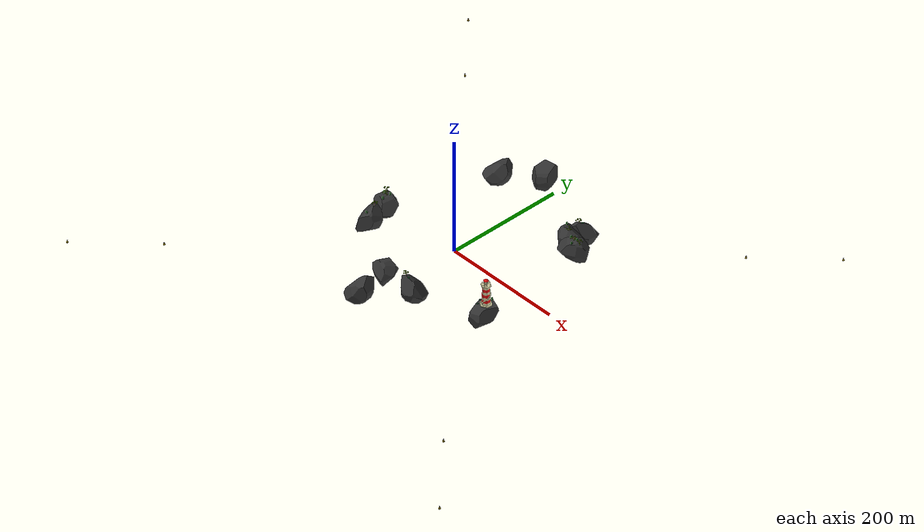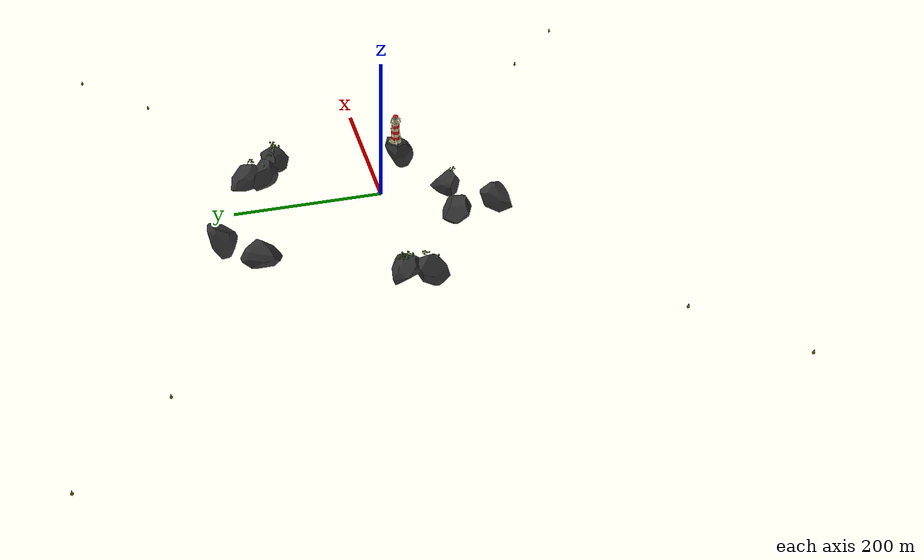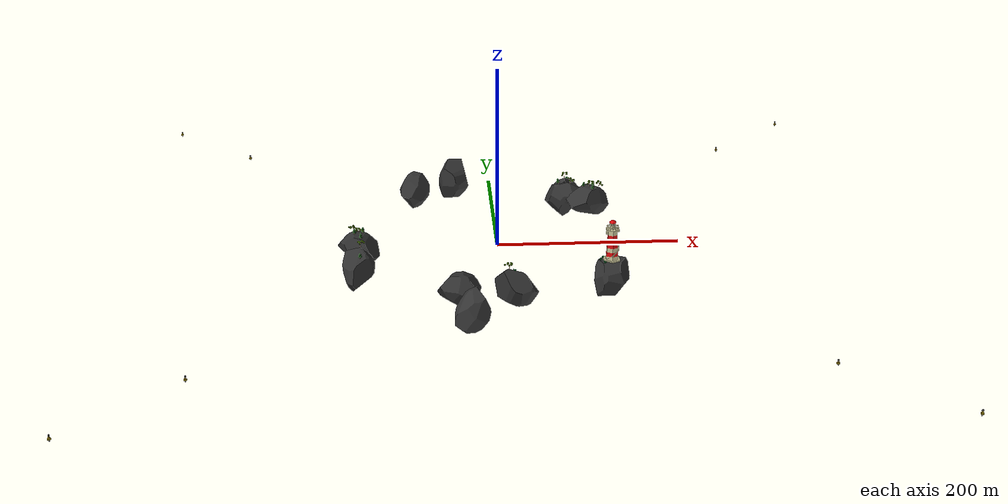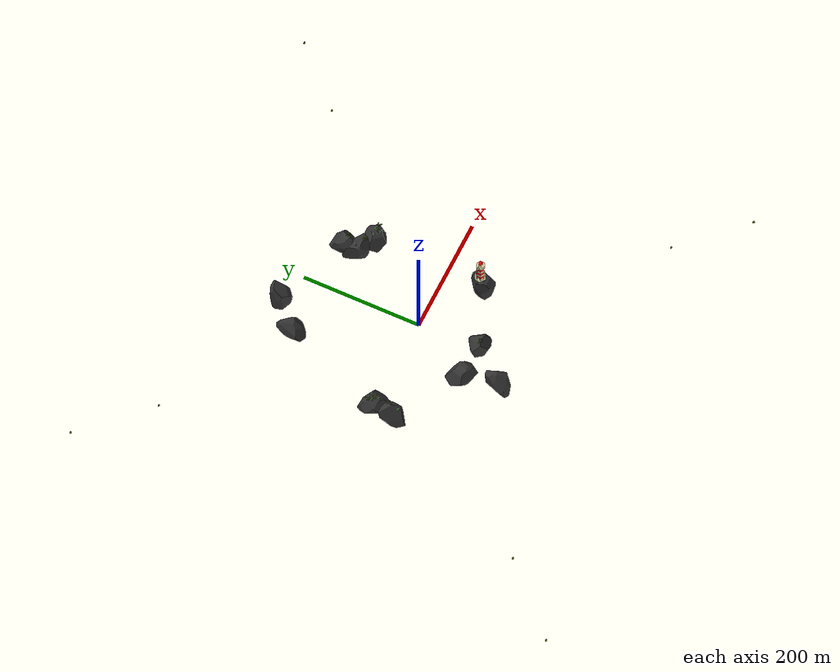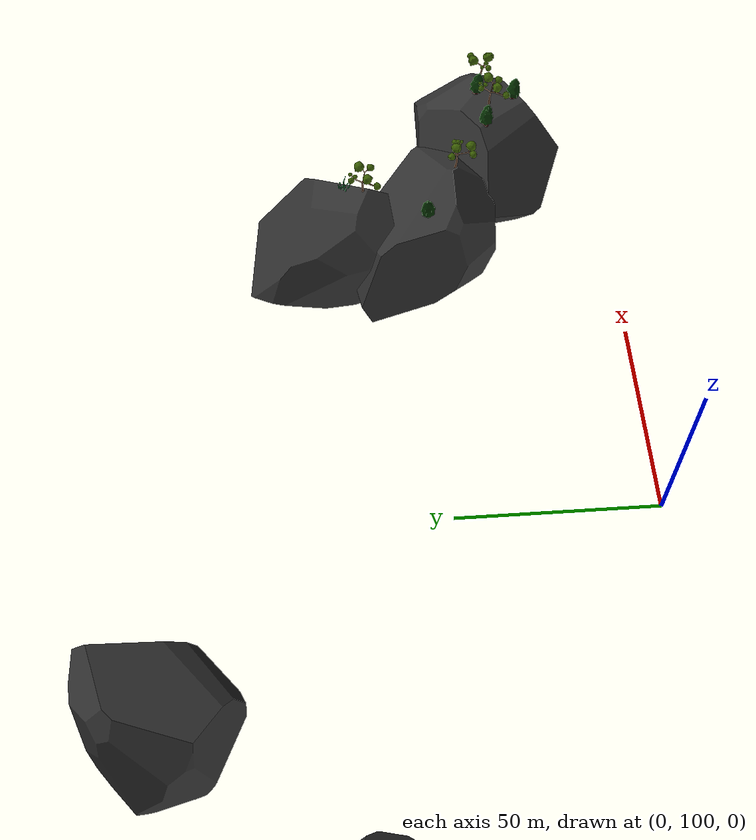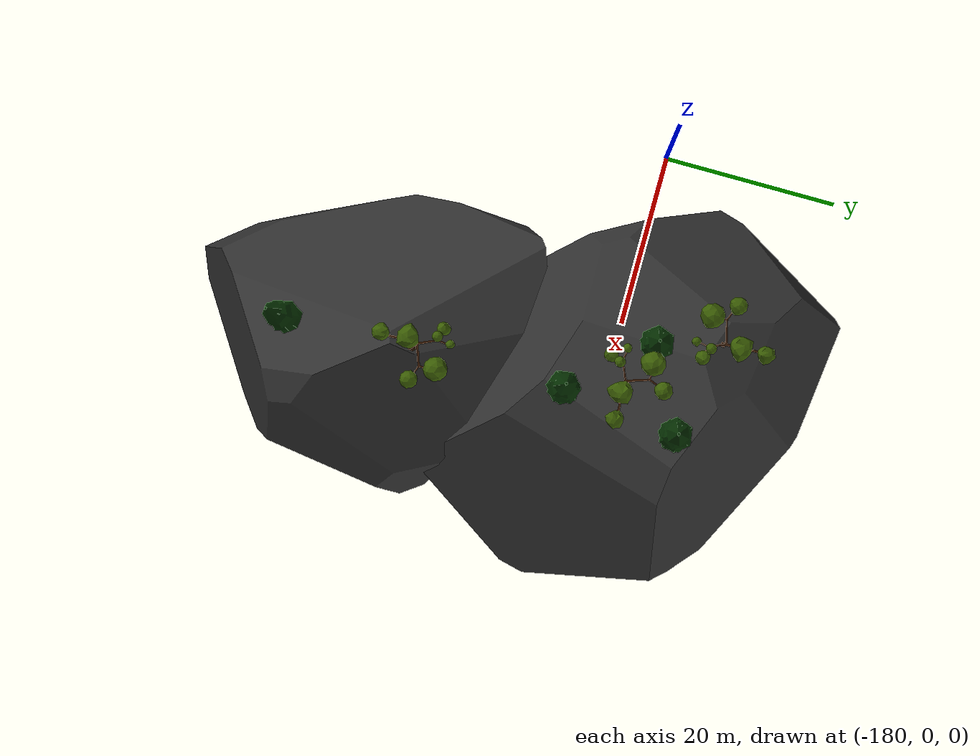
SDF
<sdf version="1.9">
 <world name="aquabot_regatta">
  <physics name="4ms" type="dart">
   <max_step_size>0.004</max_step_size>
   <real_time_factor>0.0</real_time_factor>
   <real_time_update_rate>0.0</real_time_update_rate>
  </physics>
  <plugin filename="gz-sim-physics-system" name="gz::sim::systems::Physics"/>
  <plugin filename="gz-sim-user-commands-system" name="gz::sim::systems::UserCommands"/>
  <plugin filename="gz-sim-sensors-system" name="gz::sim::systems::Sensors">
   <render_engine>ogre2</render_engine>
   <disable_on_drained_battery>true</disable_on_drained_battery>
  </plugin>
  <plugin filename="gz-sim-imu-system" name="gz::sim::systems::Imu"/>
  <plugin filename="gz-sim-magnetometer-system" name="gz::sim::systems::Magnetometer"/>
  <plugin filename="gz-sim-forcetorque-system" name="gz::sim::systems::ForceTorque"/>
  <plugin filename="gz-sim-particle-emitter2-system" name="gz::sim::systems::ParticleEmitter2"/>
  <plugin filename="gz-sim-scene-broadcaster-system" name="gz::sim::systems::SceneBroadcaster"/>
  <plugin filename="gz-sim-contact-system" name="gz::sim::systems::Contact"/>
  <plugin filename="gz-sim-navsat-system" name="gz::sim::systems::NavSat"/>
  <scene><grid>false</grid><ambient>1.0 1.0 1.0</ambient><background>0.8 0.8 0.8</background></scene>
  <spherical_coordinates>
   <surface_model>EARTH_WGS84</surface_model>
   <world_frame_orientation>ENU</world_frame_orientation>
   <latitude_deg>48.04630</latitude_deg>
   <longitude_deg>-4.97632</longitude_deg>
   <elevation>0.0</elevation>
   <heading_deg>0.0</heading_deg>
  </spherical_coordinates>
  <light type="directional" name="sun">
   <cast_shadows>false</cast_shadows>
   <pose>0 0 10 0 0 0</pose>
   <diffuse>0.8 0.8 0.8 1</diffuse>
   <specular>0.2 0.2 0.2 1</specular>
   <attenuation>
    <range>1000</range>
    <constant>0.9</constant>
    <linear>0.01</linear>
    <quadratic>0.001</quadratic>
   </attenuation>
   <direction>-0.5 0.1 -0.9</direction>
  </light>
  <include><name>aquabot_regatta_world</name><uri>aquabot_regatta_world</uri></include>
  <plugin filename="libUSVWind.so" name="vrx::USVWind">
   <wind_obj>
    <name>wamv</name>
    <link_name>wamv/base_link</link_name>
    <coeff_vector>.5 .5 .33</coeff_vector>
   </wind_obj>
   <wind_direction>240</wind_direction>
   <wind_mean_velocity>0.0</wind_mean_velocity>
   <var_wind_gain_constants>0</var_wind_gain_constants>
   <var_wind_time_constants>2</var_wind_time_constants>
   <random_seed>10</random_seed>
   <update_rate>10</update_rate>
   <topic_wind_speed>/vrx/debug/wind/speed</topic_wind_speed>
   <topic_wind_direction>/vrx/debug/wind/direction</topic_wind_direction>
  </plugin>
  <plugin filename="libPublisherPlugin.so" name="vrx::PublisherPlugin">
   <message type="gz.msgs.Param" topic="/vrx/wavefield/parameters" every="2.0">params {
          key: "direction"
          value {
            type: DOUBLE
            double_value: 0.0
          }
        }
        params {
          key: "gain"
          value {
            type: DOUBLE
            double_value: 0.3
          }
        }
        params {
          key: "period"
          value {
            type: DOUBLE
            double_value: 10.0
          }
        }
        params {
          key: "steepness"
          value {
            type: DOUBLE
            double_value: 0.0
          }
        }</message>
  </plugin>
  <include>
   <name>aquabot_sonar_buoy_0</name>
   <pose>-300 -300 0 0 1.57 0</pose>
   <uri>aquabot_sonar_buoy</uri>
   <plugin name="vrx::PolyhedraBuoyancyDrag" filename="libPolyhedraBuoyancyDrag.so">
    <fluid_density>1000</fluid_density>
    <fluid_level>0.0</fluid_level>
    <linear_drag>25.0</linear_drag>
    <angular_drag>2.0</angular_drag>
    <buoyancy name="collision_outer">
     <link_name>link</link_name>
     <pose>0 0 0 0 -1.57 0</pose>
     <geometry><cylinder><radius>1.65</radius><length>0.05</length></cylinder></geometry>
    </buoyancy>
    <wavefield><topic>/vrx/wavefield/parameters</topic></wavefield>
   </plugin>
  </include>
  <include>
   <name>aquabot_sonar_buoy_1</name>
   <pose>-300 300 0 0 1.57 0</pose>
   <uri>aquabot_sonar_buoy</uri>
   <plugin name="vrx::PolyhedraBuoyancyDrag" filename="libPolyhedraBuoyancyDrag.so">
    <fluid_density>1000</fluid_density>
    <fluid_level>0.0</fluid_level>
    <linear_drag>25.0</linear_drag>
    <angular_drag>2.0</angular_drag>
    <buoyancy name="collision_outer">
     <link_name>link</link_name>
     <pose>0 0 0 0 -1.57 0</pose>
     <geometry><cylinder><radius>1.65</radius><length>0.05</length></cylinder></geometry>
    </buoyancy>
    <wavefield><topic>/vrx/wavefield/parameters</topic></wavefield>
   </plugin>
  </include>
  <include>
   <name>aquabot_sonar_buoy_2</name>
   <pose>300 300 0 0 1.57 0</pose>
   <uri>aquabot_sonar_buoy</uri>
   <plugin name="vrx::PolyhedraBuoyancyDrag" filename="libPolyhedraBuoyancyDrag.so">
    <fluid_density>1000</fluid_density>
    <fluid_level>0.0</fluid_level>
    <linear_drag>25.0</linear_drag>
    <angular_drag>2.0</angular_drag>
    <buoyancy name="collision_outer">
     <link_name>link</link_name>
     <pose>0 0 0 0 -1.57 0</pose>
     <geometry><cylinder><radius>1.65</radius><length>0.05</length></cylinder></geometry>
    </buoyancy>
    <wavefield><topic>/vrx/wavefield/parameters</topic></wavefield>
   </plugin>
  </include>
  <include>
   <name>aquabot_sonar_buoy_3</name>
   <pose>300 -300 0 0 1.57 0</pose>
   <uri>aquabot_sonar_buoy</uri>
   <plugin name="vrx::PolyhedraBuoyancyDrag" filename="libPolyhedraBuoyancyDrag.so">
    <fluid_density>1000</fluid_density>
    <fluid_level>0.0</fluid_level>
    <linear_drag>25.0</linear_drag>
    <angular_drag>2.0</angular_drag>
    <buoyancy name="collision_outer">
     <link_name>link</link_name>
     <pose>0 0 0 0 -1.57 0</pose>
     <geometry><cylinder><radius>1.65</radius><length>0.05</length></cylinder></geometry>
    </buoyancy>
    <wavefield><topic>/vrx/wavefield/parameters</topic></wavefield>
   </plugin>
  </include>
  <include>
   <name>aquabot_sonar_buoy_4</name>
   <pose>-400 -400 0 0 1.57 0</pose>
   <uri>aquabot_sonar_buoy</uri>
   <plugin name="vrx::PolyhedraBuoyancyDrag" filename="libPolyhedraBuoyancyDrag.so">
    <fluid_density>1000</fluid_density>
    <fluid_level>0.0</fluid_level>
    <linear_drag>25.0</linear_drag>
    <angular_drag>2.0</angular_drag>
    <buoyancy name="collision_outer">
     <link_name>link</link_name>
     <pose>0 0 0 0 -1.57 0</pose>
     <geometry><cylinder><radius>1.65</radius><length>0.05</length></cylinder></geometry>
    </buoyancy>
    <wavefield><topic>/vrx/wavefield/parameters</topic></wavefield>
   </plugin>
  </include>
  <include>
   <name>aquabot_sonar_buoy_5</name>
   <pose>-400 400 0 0 1.57 0</pose>
   <uri>aquabot_sonar_buoy</uri>
   <plugin name="vrx::PolyhedraBuoyancyDrag" filename="libPolyhedraBuoyancyDrag.so">
    <fluid_density>1000</fluid_density>
    <fluid_level>0.0</fluid_level>
    <linear_drag>25.0</linear_drag>
    <angular_drag>2.0</angular_drag>
    <buoyancy name="collision_outer">
     <link_name>link</link_name>
     <pose>0 0 0 0 -1.57 0</pose>
     <geometry><cylinder><radius>1.65</radius><length>0.05</length></cylinder></geometry>
    </buoyancy>
    <wavefield><topic>/vrx/wavefield/parameters</topic></wavefield>
   </plugin>
  </include>
  <include>
   <name>aquabot_sonar_buoy_6</name>
   <pose>400 400 0 0 1.57 0</pose>
   <uri>aquabot_sonar_buoy</uri>
   <plugin name="vrx::PolyhedraBuoyancyDrag" filename="libPolyhedraBuoyancyDrag.so">
    <fluid_density>1000</fluid_density>
    <fluid_level>0.0</fluid_level>
    <linear_drag>25.0</linear_drag>
    <angular_drag>2.0</angular_drag>
    <buoyancy name="collision_outer">
     <link_name>link</link_name>
     <pose>0 0 0 0 -1.57 0</pose>
     <geometry><cylinder><radius>1.65</radius><length>0.05</length></cylinder></geometry>
    </buoyancy>
    <wavefield><topic>/vrx/wavefield/parameters</topic></wavefield>
   </plugin>
  </include>
  <include>
   <name>aquabot_sonar_buoy_7</name>
   <pose>400 -400 0 0 1.57 0</pose>
   <uri>aquabot_sonar_buoy</uri>
   <plugin name="vrx::PolyhedraBuoyancyDrag" filename="libPolyhedraBuoyancyDrag.so">
    <fluid_density>1000</fluid_density>
    <fluid_level>0.0</fluid_level>
    <linear_drag>25.0</linear_drag>
    <angular_drag>2.0</angular_drag>
    <buoyancy name="collision_outer">
     <link_name>link</link_name>
     <pose>0 0 0 0 -1.57 0</pose>
     <geometry><cylinder><radius>1.65</radius><length>0.05</length></cylinder></geometry>
    </buoyancy>
    <wavefield><topic>/vrx/wavefield/parameters</topic></wavefield>
   </plugin>
  </include>
 </world>
</sdf>

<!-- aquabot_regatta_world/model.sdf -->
<sdf version="1.6">
  <model name="aquabot_regatta_world">
    <include>
      <name>aquabot_lighthouse_island</name>
      <pose>120 -50 0 0 0 0</pose>
      <uri>aquabot_lighthouse_island</uri>
    </include>

    <include>
      <name>aquabot_island_1</name>
      <pose>-150 0 0 0 0 -3.14</pose>
      <uri>aquabot_island</uri>
    </include>

    <include>
      <name>aquabot_island_2</name>
      <pose>110 130 4 0.2 0 1.0</pose>
      <uri>aquabot_island</uri>
    </include>

    <include>
      <name>aquabot_rock_island_0</name>
      <pose>12 -102 0 0 0 0</pose>
      <uri>aquabot_rock_island_1</uri>
    </include>

    <include>
      <name>aquabot_rock_island_1</name>
      <pose>92 170 0 0 0 1</pose>
      <uri>aquabot_rock_island_1</uri>
    </include>

    <include>
      <name>aquabot_rock_0</name>
      <pose>-88 180 0 -2 1 -2</pose>
      <uri>aquabot_rock</uri>
    </include>

    <include>
      <name>aquabot_rock_1</name>
      <pose>-40 220 1 -2 2 -3</pose>
      <uri>aquabot_rock</uri>
    </include>

    <include>
      <name>aquabot_rock_2</name>
      <pose>-48 -92 -6 0 0 0</pose>
      <uri>aquabot_rock</uri>
    </include>

    <include>
      <name>aquabot_rock_3</name>
      <pose>-30 -150 -6 0 2 0</pose>
      <uri>aquabot_rock</uri>
    </include>
  </model>
</sdf>

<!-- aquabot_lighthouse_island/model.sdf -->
<sdf version="1.6">
  <model name="aquabot_lighthouse_island">
    <include>
      <name>aquabot_lighthouse</name>
      <pose>0 0 -0.5 0 0 2.60</pose>
      <uri>aquabot_lighthouse</uri>
    </include>

    <include>
      <name>aquabot_rock_3</name>
      <pose>1.4 -5.55 -10.45 0.41 0.82 -1.09</pose>
      <uri>aquabot_rock</uri>
    </include>

    <include>
      <name>aquabot_grass_1</name>
      <pose>-12 -0.27 0.9 0 0 1</pose>
      <uri>aquabot_grass</uri>
    </include>

    <include>
      <name>aquabot_grass_2</name>
      <pose>-8 6 0.8 0 0 -1</pose>
      <uri>aquabot_grass</uri>
    </include>

    <include>
      <name>aquabot_grass_3</name>
      <pose>-8 -9 0.9 0 0 -2</pose>
      <uri>aquabot_grass</uri>
    </include>

    <include>
      <name>aquabot_sapling_1</name>
      <pose>0 12 0 0 0 0</pose>
      <uri>aquabot_sapling</uri>
    </include>
  </model>
</sdf>

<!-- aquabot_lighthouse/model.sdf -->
<sdf version="1.5">
  <model name="aquabot_lighthouse">
    <static>true</static>
    <link name="link">
      <collision name="collision">
        <pose>0 0 25 0 0 0</pose>
        <geometry>
          <cylinder>
            <radius>12</radius>
            <length>50</length>
          </cylinder>
        </geometry>
      </collision>
      <visual name="visual">
        <pose>0.0 0.0 0.0 0 0 0 </pose>
        <geometry>
          <mesh>
            <scale>.2 .2 .2</scale>
            <uri>mesh/lighthouse.dae</uri>
          </mesh>
        </geometry>
      </visual>
    </link>
  </model>
</sdf>

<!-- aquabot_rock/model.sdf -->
<sdf version="1.5">
  <model name="aquabot_rock">
    <static>true</static>
    <link name="link">
      <collision name="collision">
        <pose>0 0 0 0 0 0</pose>
        <geometry>
          <mesh>
            <scale>20 20 20</scale>
            <uri>mesh/rock.dae</uri>
          </mesh>
        </geometry>
      </collision>
      <visual name="visual">
        <pose>0.0 0.0 0.0 0 0 0 </pose>
        <geometry>
          <mesh>
            <scale>20 20 20</scale>
            <uri>mesh/rock.dae</uri>
          </mesh>
        </geometry>
        <material> <!-- rock material -->
          <ambient>0.5 0.5 0.5 1</ambient>
          <diffuse>0.2 0.2 0.2 1</diffuse>
          <specular>0.4 0.4 0.4 1</specular>
          <emissive>0 0 0 1</emissive>
        </material>
      </visual>
    </link>
  </model>
</sdf>

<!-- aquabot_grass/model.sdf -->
<sdf version="1.5">
  <model name="aquabot_grass">
    <static>true</static>
    <link name="link">
      <visual name="visual">
        <pose>0.0 0.0 0.0 0 0 0 </pose>
        <geometry>
          <mesh>
            <scale>5 5 5</scale>
            <uri>mesh/grass.dae</uri>
          </mesh>
        </geometry>
      </visual>
    </link>
  </model>
</sdf>

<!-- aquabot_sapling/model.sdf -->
<sdf version="1.5">
  <model name="aquabot_sapling">
    <static>true</static>
    <link name="link">
      <collision name="collision">
        <pose>0 0 3.5 0 0 0</pose>
        <geometry>
          <box>
            <size>4 4 7</size>
          </box>
        </geometry>
      </collision>
      <visual name="visual">
        <pose>0.0 0.0 0.0 0 0 0 </pose>
        <geometry>
          <mesh>
            <uri>mesh/sapling.dae</uri>
          </mesh>
        </geometry>
      </visual>
    </link>
  </model>
</sdf>

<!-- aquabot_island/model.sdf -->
<sdf version="1.6">
  <model name="aquabot_island">
    <include>
      <name>the_rock_1</name>
      <pose>0 0 0 0 0 0</pose>
      <uri>aquabot_rock</uri>
    </include>

    <include>
      <name>the_rock_2</name>
      <pose>0 32 -15.8 0 -1.57 0</pose>
      <uri>aquabot_rock</uri>
    </include>

    <include>
      <name>sapling_1</name>
      <pose>0 4.5 11.8 0 0 1.57</pose>
      <uri>aquabot_sapling</uri>
    </include>

    <include>
      <name>sapling_2</name>
      <pose>-2 -8.5 13.5 0 0 0</pose>
      <uri>aquabot_sapling</uri>
    </include>

    <include>
      <name>sapling_3</name>
      <pose>7 -4 14 0 0 0</pose>
      <uri>aquabot_sapling</uri>
    </include>

    <include>
      <name>sapling_4</name>
      <pose>0 36 3 0 -0.4 -1.57</pose>
      <uri>aquabot_sapling</uri>
    </include>

    <include>
      <name>tree_1</name>
      <pose>2 -2 14 0 0 0</pose>
      <uri>aquabot_tree</uri>
    </include>

    <include>
      <name>tree_2</name>
      <pose>9 -11 14 0 0 1.57</pose>
      <uri>aquabot_tree</uri>
    </include>

    <include>
      <name>tree_3</name>
      <pose>0 22 9 0 0.2 -1.57</pose>
      <uri>aquabot_tree</uri>
    </include>
  </model>
</sdf>

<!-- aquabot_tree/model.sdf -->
<sdf version="1.5">
  <model name="aquabot_tree">
    <static>true</static>
    <link name="link">
      <collision name="collision">
        <pose>0 0 4 0 0 0</pose>
        <geometry>
          <cylinder>
            <radius>4</radius>
            <length>8</length>
          </cylinder>
        </geometry>
      </collision>
      <visual name="visual">
        <pose>0.0 0.0 0.0 0 0 0 </pose>
        <geometry>
          <mesh>
            <uri>mesh/tree.dae</uri>
          </mesh>
        </geometry>
      </visual>
    </link>
  </model>
</sdf>

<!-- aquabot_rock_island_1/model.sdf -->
<sdf version="1.6">
  <model name="aquabot_rock_island_1">
    <include>
      <name>aquabot_rock_1</name>
      <pose>0 0 -6 2 0 0</pose>
      <uri>aquabot_rock</uri>
    </include>

    <include>
      <name>aquabot_tree_1</name>
      <pose>-5.6 0 15 0 0 0</pose>
      <uri>aquabot_tree</uri>
    </include>

    <include>
      <name>aquabot_grass_1</name>
      <pose>0 0 13 0 0 0</pose>
      <uri>aquabot_grass</uri>
    </include>
  </model>
</sdf>

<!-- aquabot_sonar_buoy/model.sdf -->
<sdf version="1.5">
  <model name="aquabot_sonar_buoy">
    <link name="link">
      <inertial>
          <pose>0 0 0.0 0 0 0</pose>
          <mass>100</mass>
          <inertia>
              <ixx>23.16</ixx>
              <ixy>0</ixy>
              <ixz>0</ixz>
              <iyy>23.16</iyy>
              <iyz>0</iyz>
              <izz>2.25</izz>
          </inertia>
      </inertial>
      <collision name="collision_inner">
          <pose>0 0 0 0 1.57 0</pose>
          <geometry>
              <cylinder>
                  <radius>1.3</radius>
                  <length>7.5</length>
              </cylinder>
          </geometry>
      </collision>
      <collision name="collision_outer">
          <pose>0 0 0.0 0 1.57 0</pose>
          <geometry>
              <cylinder>
                  <radius>1.65</radius>
                  <length>1.5</length>
              </cylinder>
          </geometry>
      </collision>
      <visual name="visual">
        <pose>0.0 0.0 0.0 0 -1.57 0 </pose>
        <geometry>
          <mesh>
            <scale>1 1 1</scale>
            <uri>mesh/sonar_buoy.dae</uri>
          </mesh>
        </geometry>
      </visual>
    </link>
  </model>
</sdf>
